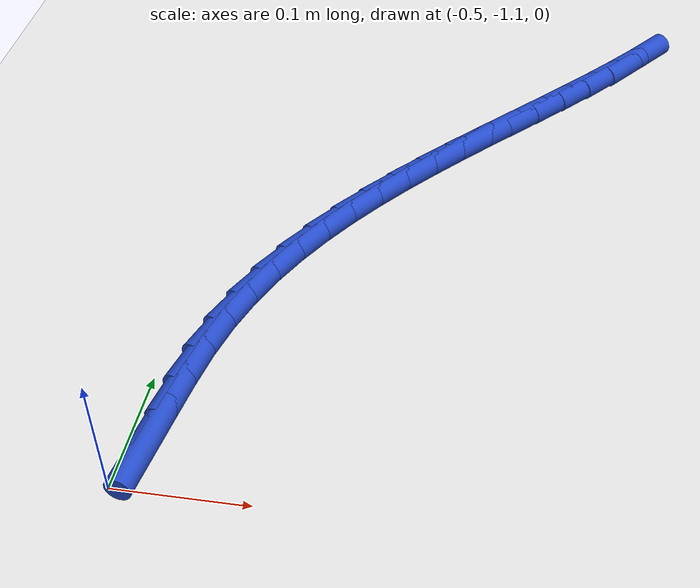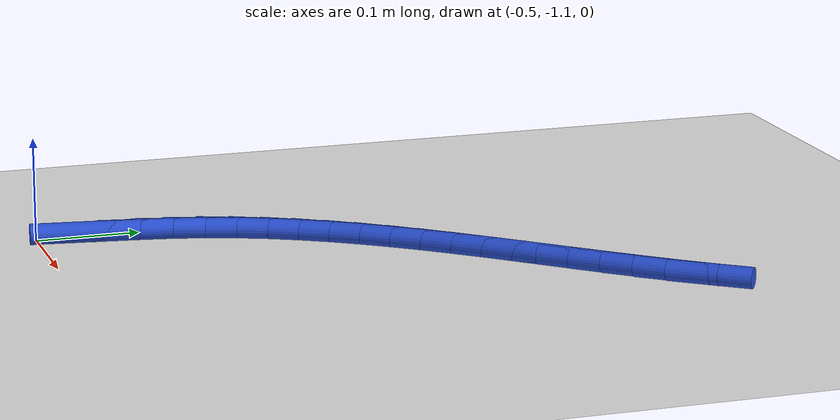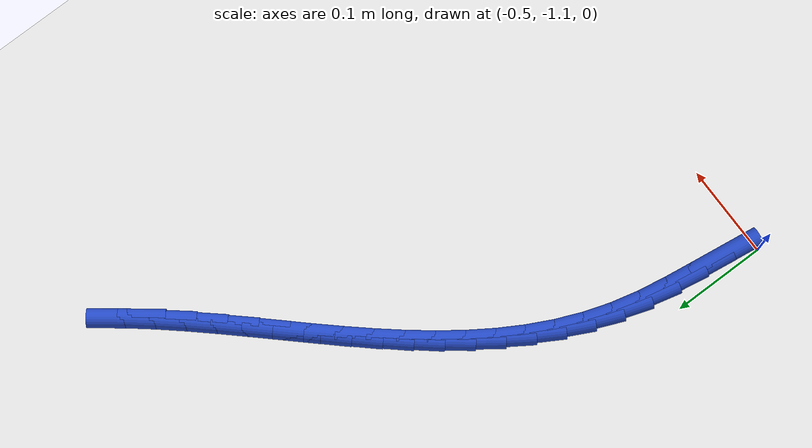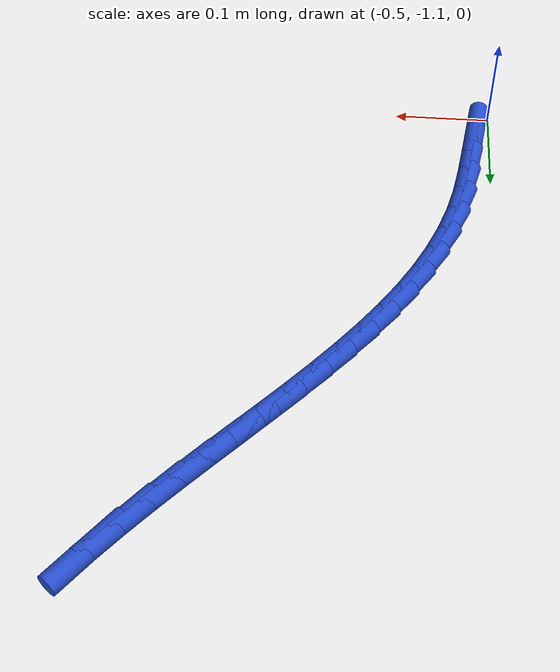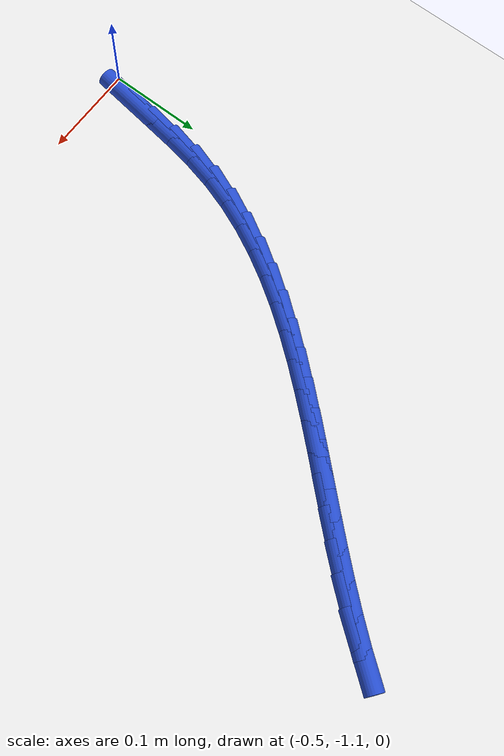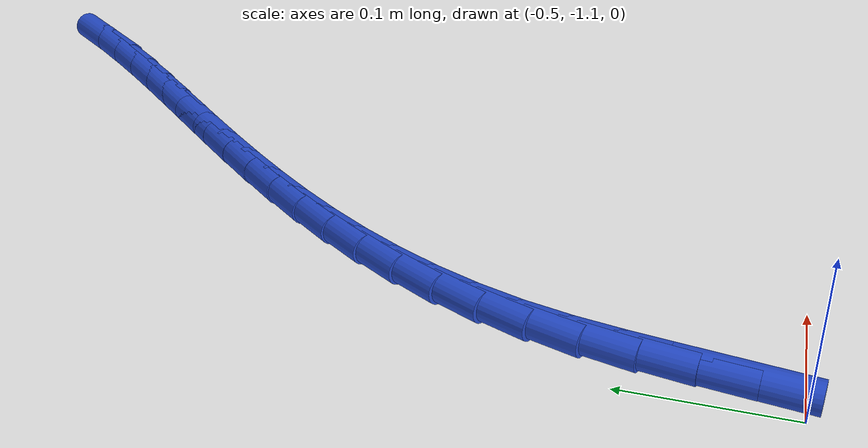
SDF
<sdf version="1.6">
 <world name="default">
  <model name="ground_plane">
   <static>1</static>
   <link name="link">
    <collision name="collision">
     <geometry><plane><normal>0 0 1</normal><size>100 100</size></plane></geometry>
     <surface><friction><ode><mu>100</mu><mu2>50</mu2></ode></friction></surface>
    </collision>
    <visual name="visual">
     <cast_shadows>0</cast_shadows>
     <geometry><plane><normal>0 0 1</normal><size>100 100</size></plane></geometry>
     <material>
      <script><uri>file://media/materials/scripts/gazebo.material</uri><name>Gazebo/WhiteGlow</name></script>
     </material>
    </visual>
   </link>
  </model>
  <model name="line">
   <link name="link_211">
    <pose>-0.48411512042936566 -1.0682070434885491 0.01 0 1.57 1.4335680110427755</pose>
    <collision name="collision">
     <geometry><cylinder><radius>0.01</radius><length>0.08</length></cylinder></geometry>
    </collision>
    <visual name="visual">
     <material>
      <script><name>Gazebo/Blue</name><uri>file://media/materials/scripts/gazebo.material</uri></script>
     </material>
     <geometry><cylinder><radius>0.01</radius><length>0.08</length></cylinder></geometry>
    </visual>
   </link>
   <link name="link_212">
    <pose>-0.47975288158582385 -1.036618652130991 0.01 0 1.57 1.4292572592707713</pose>
    <collision name="collision">
     <geometry><cylinder><radius>0.01</radius><length>0.08</length></cylinder></geometry>
    </collision>
    <visual name="visual">
     <material>
      <script><name>Gazebo/Blue</name><uri>file://media/materials/scripts/gazebo.material</uri></script>
     </material>
     <geometry><cylinder><radius>0.01</radius><length>0.08</length></cylinder></geometry>
    </visual>
   </link>
   <link name="link_213">
    <pose>-0.47524800448352866 -1.0050036754513625 0.01 0 1.57 1.3948654336301904</pose>
    <collision name="collision">
     <geometry><cylinder><radius>0.01</radius><length>0.08</length></cylinder></geometry>
    </collision>
    <visual name="visual">
     <material>
      <script><name>Gazebo/Blue</name><uri>file://media/materials/scripts/gazebo.material</uri></script>
     </material>
     <geometry><cylinder><radius>0.01</radius><length>0.08</length></cylinder></geometry>
    </visual>
   </link>
   <link name="link_214">
    <pose>-0.4697126899924483 -0.9738659536456135 0.01 0 1.57 1.3293184693858995</pose>
    <collision name="collision">
     <geometry><cylinder><radius>0.01</radius><length>0.08</length></cylinder></geometry>
    </collision>
    <visual name="visual">
     <material>
      <script><name>Gazebo/Blue</name><uri>file://media/materials/scripts/gazebo.material</uri></script>
     </material>
     <geometry><cylinder><radius>0.01</radius><length>0.08</length></cylinder></geometry>
    </visual>
   </link>
   <link name="link_215">
    <pose>-0.46228238804263244 -0.9436962590127241 0.01 0 1.57 1.2491036609203379</pose>
    <collision name="collision">
     <geometry><cylinder><radius>0.01</radius><length>0.08</length></cylinder></geometry>
    </collision>
    <visual name="visual">
     <material>
      <script><name>Gazebo/Blue</name><uri>file://media/materials/scripts/gazebo.material</uri></script>
     </material>
     <geometry><cylinder><radius>0.01</radius><length>0.08</length></cylinder></geometry>
    </visual>
   </link>
   <link name="link_216">
    <pose>-0.4526158996860118 -0.9146911971836446 0.01 0 1.57 1.1733422719771724</pose>
    <collision name="collision">
     <geometry><cylinder><radius>0.01</radius><length>0.08</length></cylinder></geometry>
    </collision>
    <visual name="visual">
     <material>
      <script><name>Gazebo/Blue</name><uri>file://media/materials/scripts/gazebo.material</uri></script>
     </material>
     <geometry><cylinder><radius>0.01</radius><length>0.08</length></cylinder></geometry>
    </visual>
   </link>
   <link name="link_217">
    <pose>-0.44088913336032265 -0.8867567166179955 0.01 0 1.57 1.1040692798273128</pose>
    <collision name="collision">
     <geometry><cylinder><radius>0.01</radius><length>0.08</length></cylinder></geometry>
    </collision>
    <visual name="visual">
     <material>
      <script><name>Gazebo/Blue</name><uri>file://media/materials/scripts/gazebo.material</uri></script>
     </material>
     <geometry><cylinder><radius>0.01</radius><length>0.08</length></cylinder></geometry>
    </visual>
   </link>
   <link name="link_218">
    <pose>-0.4272999977597799 -0.8597863998094664 0.01 0 1.57 1.0421145362220121</pose>
    <collision name="collision">
     <geometry><cylinder><radius>0.01</radius><length>0.08</length></cylinder></geometry>
    </collision>
    <visual name="visual">
     <material>
      <script><name>Gazebo/Blue</name><uri>file://media/materials/scripts/gazebo.material</uri></script>
     </material>
     <geometry><cylinder><radius>0.01</radius><length>0.08</length></cylinder></geometry>
    </visual>
   </link>
   <link name="link_219">
    <pose>-0.4120464015785975 -0.8336738292517462 0.01 0 1.57 0.9879253325697477</pose>
    <collision name="collision">
     <geometry><cylinder><radius>0.01</radius><length>0.08</length></cylinder></geometry>
    </collision>
    <visual name="visual">
     <material>
      <script><name>Gazebo/Blue</name><uri>file://media/materials/scripts/gazebo.material</uri></script>
     </material>
     <geometry><cylinder><radius>0.01</radius><length>0.08</length></cylinder></geometry>
    </visual>
   </link>
   <link name="link_220">
    <pose>-0.39532625351099016 -0.8083125874385234 0.01 0 1.57 0.9416487590511362</pose>
    <collision name="collision">
     <geometry><cylinder><radius>0.01</radius><length>0.08</length></cylinder></geometry>
    </collision>
    <visual name="visual">
     <material>
      <script><name>Gazebo/Blue</name><uri>file://media/materials/scripts/gazebo.material</uri></script>
     </material>
     <geometry><cylinder><radius>0.01</radius><length>0.08</length></cylinder></geometry>
    </visual>
   </link>
   <link name="link_221">
    <pose>-0.3773374622511722 -0.7835962568634877 0.01 0 1.57 0.9032268643158397</pose>
    <collision name="collision">
     <geometry><cylinder><radius>0.01</radius><length>0.08</length></cylinder></geometry>
    </collision>
    <visual name="visual">
     <material>
      <script><name>Gazebo/Blue</name><uri>file://media/materials/scripts/gazebo.material</uri></script>
     </material>
     <geometry><cylinder><radius>0.01</radius><length>0.08</length></cylinder></geometry>
    </visual>
   </link>
   <link name="link_222">
    <pose>-0.35827793649335793 -0.7594184200203276 0.01 0 1.57 0.8724844330894562</pose>
    <collision name="collision">
     <geometry><cylinder><radius>0.01</radius><length>0.08</length></cylinder></geometry>
    </collision>
    <visual name="visual">
     <material>
      <script><name>Gazebo/Blue</name><uri>file://media/materials/scripts/gazebo.material</uri></script>
     </material>
     <geometry><cylinder><radius>0.01</radius><length>0.08</length></cylinder></geometry>
    </visual>
   </link>
   <link name="link_223">
    <pose>-0.33834558493176176 -0.7356726594027321 0.01 0 1.57 0.849199736755595</pose>
    <collision name="collision">
     <geometry><cylinder><radius>0.01</radius><length>0.08</length></cylinder></geometry>
    </collision>
    <visual name="visual">
     <material>
      <script><name>Gazebo/Blue</name><uri>file://media/materials/scripts/gazebo.material</uri></script>
     </material>
     <geometry><cylinder><radius>0.01</radius><length>0.08</length></cylinder></geometry>
    </visual>
   </link>
   <link name="link_224">
    <pose>-0.31773831626059834 -0.7122525575043908 0.01 0 1.57 0.8331562661589426</pose>
    <collision name="collision">
     <geometry><cylinder><radius>0.01</radius><length>0.08</length></cylinder></geometry>
    </collision>
    <visual name="visual">
     <material>
      <script><name>Gazebo/Blue</name><uri>file://media/materials/scripts/gazebo.material</uri></script>
     </material>
     <geometry><cylinder><radius>0.01</radius><length>0.08</length></cylinder></geometry>
    </visual>
   </link>
   <link name="link_225">
    <pose>-0.2966540391740818 -0.6890516968189917 0.01 0 1.57 0.8241774822646174</pose>
    <collision name="collision">
     <geometry><cylinder><radius>0.01</radius><length>0.08</length></cylinder></geometry>
    </collision>
    <visual name="visual">
     <material>
      <script><name>Gazebo/Blue</name><uri>file://media/materials/scripts/gazebo.material</uri></script>
     </material>
     <geometry><cylinder><radius>0.01</radius><length>0.08</length></cylinder></geometry>
    </visual>
   </link>
   <link name="link_226">
    <pose>-0.27529066236642663 -0.6659636598402245 0.01 0 1.57 0.8221478962270345</pose>
    <collision name="collision">
     <geometry><cylinder><radius>0.01</radius><length>0.08</length></cylinder></geometry>
    </collision>
    <visual name="visual">
     <material>
      <script><name>Gazebo/Blue</name><uri>file://media/materials/scripts/gazebo.material</uri></script>
     </material>
     <geometry><cylinder><radius>0.01</radius><length>0.08</length></cylinder></geometry>
    </visual>
   </link>
   <link name="link_227">
    <pose>-0.25384609453184714 -0.6428820290617779 0.01 0 1.57 0.8270234669536107</pose>
    <collision name="collision">
     <geometry><cylinder><radius>0.01</radius><length>0.08</length></cylinder></geometry>
    </collision>
    <visual name="visual">
     <material>
      <script><name>Gazebo/Blue</name><uri>file://media/materials/scripts/gazebo.material</uri></script>
     </material>
     <geometry><cylinder><radius>0.01</radius><length>0.08</length></cylinder></geometry>
    </visual>
   </link>
   <link name="link_228">
    <pose>-0.23251824436455795 -0.6197003869773412 0.01 0 1.57 0.8388332348462395</pose>
    <collision name="collision">
     <geometry><cylinder><radius>0.01</radius><length>0.08</length></cylinder></geometry>
    </collision>
    <visual name="visual">
     <material>
      <script><name>Gazebo/Blue</name><uri>file://media/materials/scripts/gazebo.material</uri></script>
     </material>
     <geometry><cylinder><radius>0.01</radius><length>0.08</length></cylinder></geometry>
    </visual>
   </link>
   <link name="link_229">
    <pose>-0.21150502055877324 -0.5963123160806029 0.01 0 1.57 0.8576727831586066</pose>
    <collision name="collision">
     <geometry><cylinder><radius>0.01</radius><length>0.08</length></cylinder></geometry>
    </collision>
    <visual name="visual">
     <material>
      <script><name>Gazebo/Blue</name><uri>file://media/materials/scripts/gazebo.material</uri></script>
     </material>
     <geometry><cylinder><radius>0.01</radius><length>0.08</length></cylinder></geometry>
    </visual>
   </link>
   <link name="link_230">
    <pose>-0.19100433180870754 -0.5726113988652525 0.01 0 1.57 0.883688786730976</pose>
    <collision name="collision">
     <geometry><cylinder><radius>0.01</radius><length>0.08</length></cylinder></geometry>
    </collision>
    <visual name="visual">
     <material>
      <script><name>Gazebo/Blue</name><uri>file://media/materials/scripts/gazebo.material</uri></script>
     </material>
     <geometry><cylinder><radius>0.01</radius><length>0.08</length></cylinder></geometry>
    </visual>
   </link>
   <link name="link_231">
    <pose>-0.1712140868085752 -0.5484912178249784 0.01 0 1.57 0.9170527619782154</pose>
    <collision name="collision">
     <geometry><cylinder><radius>0.01</radius><length>0.08</length></cylinder></geometry>
    </collision>
    <visual name="visual">
     <material>
      <script><name>Gazebo/Blue</name><uri>file://media/materials/scripts/gazebo.material</uri></script>
     </material>
     <geometry><cylinder><radius>0.01</radius><length>0.08</length></cylinder></geometry>
    </visual>
   </link>
  </model>
 </world>
</sdf>
